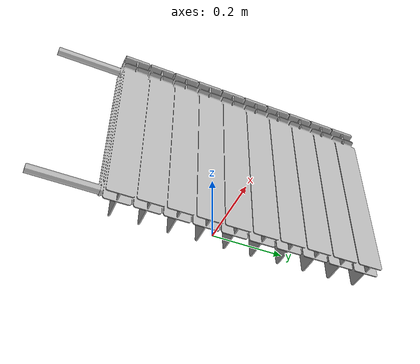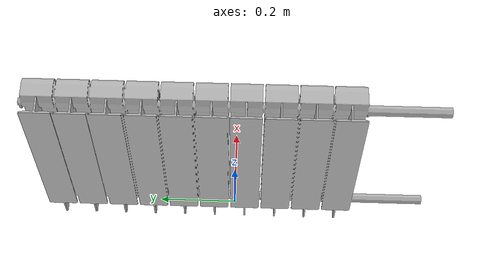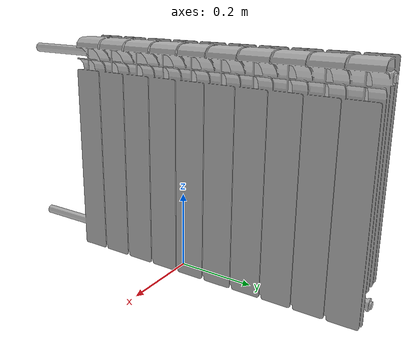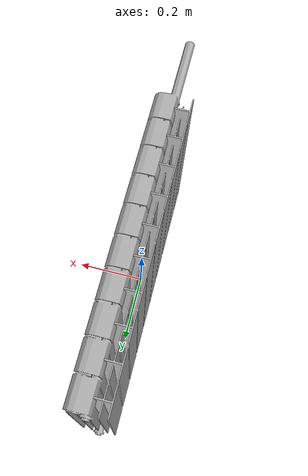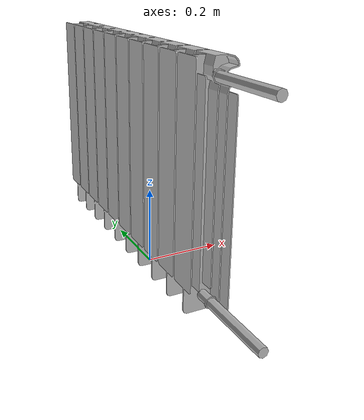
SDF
<?xml version='1.0'?>
<sdf version='1.4'>
  <model name='510'>
    <pose>0 0 0 0 0 0</pose>
    <static>true</static>
    <link name='link'>
      <collision name='collision'>
        <pose>0 0 0 0 0 0</pose>
        <geometry>
          <box>
            <size>0.0999999 0.99977 2</size>
          </box>
        </geometry>
      </collision>
      <visual name='visual'>
        <pose>0 0 0 0 0 0</pose>
        <geometry>
          <mesh><uri>model://510/510.dae</uri></mesh>
        </geometry>
      </visual>
    </link>
  </model>
</sdf>
